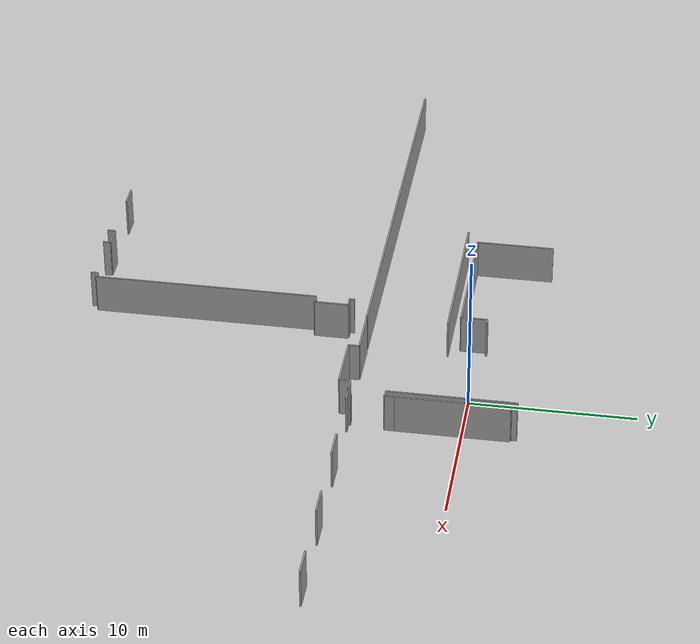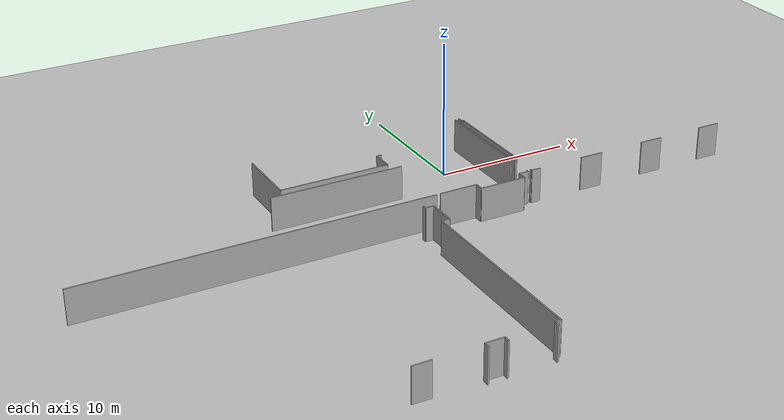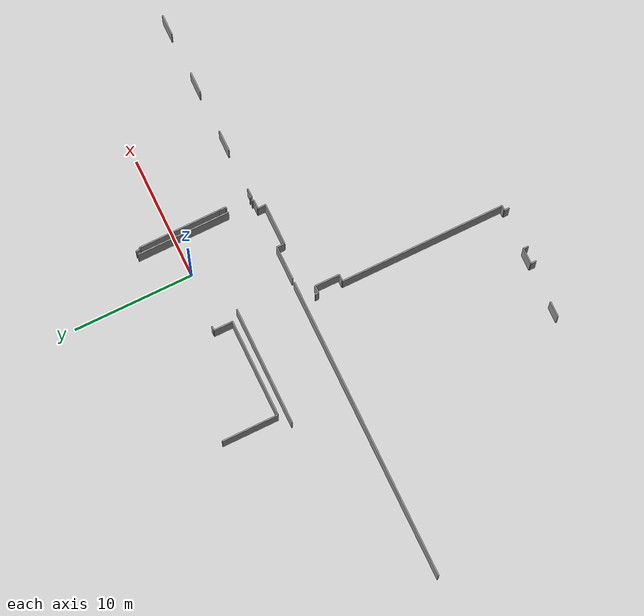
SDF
<sdf version="1.6">
 <world name="default">
  <model name="ground_plane">
   <static>1</static>
   <link name="link">
    <collision name="collision">
     <geometry><plane><normal>0 0 1</normal><size>100 100</size></plane></geometry>
     <surface><friction><ode><mu>100</mu><mu2>50</mu2></ode></friction></surface>
    </collision>
    <visual name="visual">
     <cast_shadows>0</cast_shadows>
     <geometry><plane><normal>0 0 1</normal><size>100 100</size></plane></geometry>
     <material>
      <script><uri>file://media/materials/scripts/gazebo.material</uri><name>Gazebo/Grey</name></script>
     </material>
    </visual>
   </link>
  </model>
  <model name="0510032197_A_40_1_105">
   <static>1</static>
   <link name="Wall_238">
    <collision name="Wall_238_Collision">
     <geometry><box><size>6.7708028826 0.1 2.5</size></box></geometry>
     <pose>3.3854014413 0 1.25 0 0 0</pose>
    </collision>
    <visual name="Wall_238_Visual">
     <pose>3.3854014413 0 1.25 0 0 0</pose>
     <geometry><box><size>6.7708028826 0.1 2.5</size></box></geometry>
     <material>
      <script><uri>file://media/materials/scripts/gazebo.material</uri><name>Gazebo/Grey</name></script>
      <ambient>1 1 1 1</ambient>
     </material>
    </visual>
    <pose>68.7288857255 -28.0828429441 0 0 0 1.57079632679</pose>
   </link>
   <link name="Wall_239">
    <collision name="Wall_239_Collision">
     <geometry><box><size>0.143748649576 0.1 2.5</size></box></geometry>
     <pose>0.0718743247881 0 1.25 0 0 0</pose>
    </collision>
    <visual name="Wall_239_Visual">
     <pose>0.0718743247881 0 1.25 0 0 0</pose>
     <geometry><box><size>0.143748649576 0.1 2.5</size></box></geometry>
     <material>
      <script><uri>file://media/materials/scripts/gazebo.material</uri><name>Gazebo/Grey</name></script>
      <ambient>1 1 1 1</ambient>
     </material>
    </visual>
    <pose>68.7288857255 -21.3120400615 0 0 0 3.14159265359</pose>
   </link>
   <link name="Wall_240">
    <collision name="Wall_240_Collision">
     <geometry><box><size>0.367696589941 0.1 2.5</size></box></geometry>
     <pose>0.183848294971 0 1.25 0 0 0</pose>
    </collision>
    <visual name="Wall_240_Visual">
     <pose>0.183848294971 0 1.25 0 0 0</pose>
     <geometry><box><size>0.367696589941 0.1 2.5</size></box></geometry>
     <material>
      <script><uri>file://media/materials/scripts/gazebo.material</uri><name>Gazebo/Grey</name></script>
      <ambient>1 1 1 1</ambient>
     </material>
    </visual>
    <pose>68.585137076 -21.3120400615 0 0 0 1.57079632679</pose>
   </link>
   <link name="Wall_252">
    <collision name="Wall_252_Collision">
     <geometry><box><size>1.69536979372 0.1 2.5</size></box></geometry>
     <pose>0.847684896859 0 1.25 0 0 0</pose>
    </collision>
    <visual name="Wall_252_Visual">
     <pose>0.847684896859 0 1.25 0 0 0</pose>
     <geometry><box><size>1.69536979372 0.1 2.5</size></box></geometry>
     <material>
      <script><uri>file://media/materials/scripts/gazebo.material</uri><name>Gazebo/Grey</name></script>
      <ambient>1 1 1 1</ambient>
     </material>
    </visual>
    <pose>84.6741824375 -30.8305901193 0 0 0 3.14159265359</pose>
   </link>
   <link name="Wall_253">
    <collision name="Wall_253_Collision">
     <geometry><box><size>1.72790706542 0.1 2.5</size></box></geometry>
     <pose>0.863953532709 0 1.25 0 0 0</pose>
    </collision>
    <visual name="Wall_253_Visual">
     <pose>0.863953532709 0 1.25 0 0 0</pose>
     <geometry><box><size>1.72790706542 0.1 2.5</size></box></geometry>
     <material>
      <script><uri>file://media/materials/scripts/gazebo.material</uri><name>Gazebo/Grey</name></script>
      <ambient>1 1 1 1</ambient>
     </material>
    </visual>
    <pose>79.5557899821 -30.8305901193 0 0 0 3.14159265359</pose>
   </link>
   <link name="Wall_254">
    <collision name="Wall_254_Collision">
     <geometry><box><size>1.72981354618 0.1 2.5</size></box></geometry>
     <pose>0.864906773091 0 1.25 0 0 0</pose>
    </collision>
    <visual name="Wall_254_Visual">
     <pose>0.864906773091 0 1.25 0 0 0</pose>
     <geometry><box><size>1.72981354618 0.1 2.5</size></box></geometry>
     <material>
      <script><uri>file://media/materials/scripts/gazebo.material</uri><name>Gazebo/Grey</name></script>
      <ambient>1 1 1 1</ambient>
     </material>
    </visual>
    <pose>74.4015556883 -30.8305901193 0 0 0 3.14159265359</pose>
   </link>
   <link name="Wall_255">
    <collision name="Wall_255_Collision">
     <geometry><box><size>0.701966217161 0.1 2.5</size></box></geometry>
     <pose>0.35098310858 0 1.25 0 0 0</pose>
    </collision>
    <visual name="Wall_255_Visual">
     <pose>0.35098310858 0 1.25 0 0 0</pose>
     <geometry><box><size>0.701966217161 0.1 2.5</size></box></geometry>
     <material>
      <script><uri>file://media/materials/scripts/gazebo.material</uri><name>Gazebo/Grey</name></script>
      <ambient>1 1 1 1</ambient>
     </material>
    </visual>
    <pose>69.3038803238 -30.8305901193 0 0 0 3.14159265359</pose>
   </link>
   <link name="Wall_256">
    <collision name="Wall_256_Collision">
     <geometry><box><size>0.15874629825 0.1 2.5</size></box></geometry>
     <pose>0.0793731491249 0 1.25 0 0 0</pose>
    </collision>
    <visual name="Wall_256_Visual">
     <pose>0.0793731491249 0 1.25 0 0 0</pose>
     <geometry><box><size>0.15874629825 0.1 2.5</size></box></geometry>
     <material>
      <script><uri>file://media/materials/scripts/gazebo.material</uri><name>Gazebo/Grey</name></script>
      <ambient>1 1 1 1</ambient>
     </material>
    </visual>
    <pose>68.6019141067 -30.8305901193 0 0 0 1.57079632679</pose>
   </link>
   <link name="Wall_257">
    <collision name="Wall_257_Collision">
     <geometry><box><size>0.126971618856 0.1 2.5</size></box></geometry>
     <pose>0.0634858094282 0 1.25 0 0 0</pose>
    </collision>
    <visual name="Wall_257_Visual">
     <pose>0.0634858094282 0 1.25 0 0 0</pose>
     <geometry><box><size>0.126971618856 0.1 2.5</size></box></geometry>
     <material>
      <script><uri>file://media/materials/scripts/gazebo.material</uri><name>Gazebo/Grey</name></script>
      <ambient>1 1 1 1</ambient>
     </material>
    </visual>
    <pose>68.6019141067 -28.6691493283 0 0 0 0.0</pose>
   </link>
   <link name="Wall_258">
    <collision name="Wall_258_Collision">
     <geometry><box><size>0.586306384169 0.1 2.5</size></box></geometry>
     <pose>0.293153192084 0 1.25 0 0 0</pose>
    </collision>
    <visual name="Wall_258_Visual">
     <pose>0.293153192084 0 1.25 0 0 0</pose>
     <geometry><box><size>0.586306384169 0.1 2.5</size></box></geometry>
     <material>
      <script><uri>file://media/materials/scripts/gazebo.material</uri><name>Gazebo/Grey</name></script>
      <ambient>1 1 1 1</ambient>
     </material>
    </visual>
    <pose>68.7288857255 -28.6691493283 0 0 0 1.57079632679</pose>
   </link>
   <link name="Wall_259">
    <collision name="Wall_259_Collision">
     <geometry><box><size>2.78282642128 0.1 2.5</size></box></geometry>
     <pose>1.39141321064 0 1.25 0 0 0</pose>
    </collision>
    <visual name="Wall_259_Visual">
     <pose>1.39141321064 0 1.25 0 0 0</pose>
     <geometry><box><size>2.78282642128 0.1 2.5</size></box></geometry>
     <material>
      <script><uri>file://media/materials/scripts/gazebo.material</uri><name>Gazebo/Grey</name></script>
      <ambient>1 1 1 1</ambient>
     </material>
    </visual>
    <pose>61.3907141677 -30.8698636231 0 0 0 0.0</pose>
   </link>
   <link name="Wall_260">
    <collision name="Wall_260_Collision">
     <geometry><box><size>0.646805373734 0.1 2.5</size></box></geometry>
     <pose>0.323402686867 0 1.25 0 0 0</pose>
    </collision>
    <visual name="Wall_260_Visual">
     <pose>0.323402686867 0 1.25 0 0 0</pose>
     <geometry><box><size>0.646805373734 0.1 2.5</size></box></geometry>
     <material>
      <script><uri>file://media/materials/scripts/gazebo.material</uri><name>Gazebo/Grey</name></script>
      <ambient>1 1 1 1</ambient>
     </material>
    </visual>
    <pose>64.173540589 -30.8698636231 0 0 0 -1.57079632679</pose>
   </link>
   <link name="Wall_261">
    <collision name="Wall_261_Collision">
     <geometry><box><size>3.39531514127 0.1 2.5</size></box></geometry>
     <pose>1.69765757064 0 1.25 0 0 0</pose>
    </collision>
    <visual name="Wall_261_Visual">
     <pose>1.69765757064 0 1.25 0 0 0</pose>
     <geometry><box><size>3.39531514127 0.1 2.5</size></box></geometry>
     <material>
      <script><uri>file://media/materials/scripts/gazebo.material</uri><name>Gazebo/Grey</name></script>
      <ambient>1 1 1 1</ambient>
     </material>
    </visual>
    <pose>64.173540589 -31.5166689968 0 0 0 0.0</pose>
   </link>
   <link name="Wall_262">
    <collision name="Wall_262_Collision">
     <geometry><box><size>0.661294627537 0.1 2.5</size></box></geometry>
     <pose>0.330647313769 0 1.25 0 0 0</pose>
    </collision>
    <visual name="Wall_262_Visual">
     <pose>0.330647313769 0 1.25 0 0 0</pose>
     <geometry><box><size>0.661294627537 0.1 2.5</size></box></geometry>
     <material>
      <script><uri>file://media/materials/scripts/gazebo.material</uri><name>Gazebo/Grey</name></script>
      <ambient>1 1 1 1</ambient>
     </material>
    </visual>
    <pose>67.5688557302 -31.5166689968 0 0 0 1.57079632679</pose>
   </link>
   <link name="Wall_263">
    <collision name="Wall_263_Collision">
     <geometry><box><size>0.712134114567 0.1 2.5</size></box></geometry>
     <pose>0.356067057283 0 1.25 0 0 0</pose>
    </collision>
    <visual name="Wall_263_Visual">
     <pose>0.356067057283 0 1.25 0 0 0</pose>
     <geometry><box><size>0.712134114567 0.1 2.5</size></box></geometry>
     <material>
      <script><uri>file://media/materials/scripts/gazebo.material</uri><name>Gazebo/Grey</name></script>
      <ambient>1 1 1 1</ambient>
     </material>
    </visual>
    <pose>67.5688557302 -30.8553743693 0 0 0 0.0</pose>
   </link>
   <link name="Wall_264">
    <collision name="Wall_264_Collision">
     <geometry><box><size>0.159890186708 0.1 2.5</size></box></geometry>
     <pose>0.079945093354 0 1.25 0 0 0</pose>
    </collision>
    <visual name="Wall_264_Visual">
     <pose>0.079945093354 0 1.25 0 0 0</pose>
     <geometry><box><size>0.159890186708 0.1 2.5</size></box></geometry>
     <material>
      <script><uri>file://media/materials/scripts/gazebo.material</uri><name>Gazebo/Grey</name></script>
      <ambient>1 1 1 1</ambient>
     </material>
    </visual>
    <pose>68.2809898448 -30.8553743693 0 0 0 1.57079632679</pose>
   </link>
   <link name="Wall_265">
    <collision name="Wall_265_Collision">
     <geometry><box><size>7.74653973741 0.1 2.5</size></box></geometry>
     <pose>3.87326986871 0 1.25 0 0 0</pose>
    </collision>
    <visual name="Wall_265_Visual">
     <pose>3.87326986871 0 1.25 0 0 0</pose>
     <geometry><box><size>7.74653973741 0.1 2.5</size></box></geometry>
     <material>
      <script><uri>file://media/materials/scripts/gazebo.material</uri><name>Gazebo/Grey</name></script>
      <ambient>1 1 1 1</ambient>
     </material>
    </visual>
    <pose>68.2809898448 -28.6971110461 0 0 0 1.57079632679</pose>
   </link>
   <link name="Wall_273">
    <collision name="Wall_273_Collision">
     <geometry><box><size>4.73290204502 0.1 2.5</size></box></geometry>
     <pose>2.36645102251 0 1.25 0 0 0</pose>
    </collision>
    <visual name="Wall_273_Visual">
     <pose>2.36645102251 0 1.25 0 0 0</pose>
     <geometry><box><size>4.73290204502 0.1 2.5</size></box></geometry>
     <material>
      <script><uri>file://media/materials/scripts/gazebo.material</uri><name>Gazebo/Grey</name></script>
      <ambient>1 1 1 1</ambient>
     </material>
    </visual>
    <pose>52.3396331931 -25.2737070883 0 0 0 1.57079632679</pose>
   </link>
   <link name="Wall_285">
    <collision name="Wall_285_Collision">
     <geometry><box><size>0.345073018213 0.1 2.5</size></box></geometry>
     <pose>0.172536509107 0 1.25 0 0 0</pose>
    </collision>
    <visual name="Wall_285_Visual">
     <pose>0.172536509107 0 1.25 0 0 0</pose>
     <geometry><box><size>0.345073018213 0.1 2.5</size></box></geometry>
     <material>
      <script><uri>file://media/materials/scripts/gazebo.material</uri><name>Gazebo/Grey</name></script>
      <ambient>1 1 1 1</ambient>
     </material>
    </visual>
    <pose>60.7379351542 -23.6881505866 0 0 0 3.14159265359</pose>
   </link>
   <link name="Wall_286">
    <collision name="Wall_286_Collision">
     <geometry><box><size>1.58631909404 0.1 2.5</size></box></geometry>
     <pose>0.79315954702 0 1.25 0 0 0</pose>
    </collision>
    <visual name="Wall_286_Visual">
     <pose>0.79315954702 0 1.25 0 0 0</pose>
     <geometry><box><size>1.58631909404 0.1 2.5</size></box></geometry>
     <material>
      <script><uri>file://media/materials/scripts/gazebo.material</uri><name>Gazebo/Grey</name></script>
      <ambient>1 1 1 1</ambient>
     </material>
    </visual>
    <pose>60.392862136 -23.6881505866 0 0 0 -1.57079632679</pose>
   </link>
   <link name="Wall_287">
    <collision name="Wall_287_Collision">
     <geometry><box><size>8.05322897903 0.1 2.5</size></box></geometry>
     <pose>4.02661448951 0 1.25 0 0 0</pose>
    </collision>
    <visual name="Wall_287_Visual">
     <pose>4.02661448951 0 1.25 0 0 0</pose>
     <geometry><box><size>8.05322897903 0.1 2.5</size></box></geometry>
     <material>
      <script><uri>file://media/materials/scripts/gazebo.material</uri><name>Gazebo/Grey</name></script>
      <ambient>1 1 1 1</ambient>
     </material>
    </visual>
    <pose>60.392862136 -25.2744696806 0 0 0 3.14149795961</pose>
   </link>
   <link name="Wall_371">
    <collision name="Wall_371_Collision">
     <geometry><box><size>0.30020717091 0.1 2.5</size></box></geometry>
     <pose>0.150103585455 0 1.25 0 0 0</pose>
    </collision>
    <visual name="Wall_371_Visual">
     <pose>0.150103585455 0 1.25 0 0 0</pose>
     <geometry><box><size>0.30020717091 0.1 2.5</size></box></geometry>
     <material>
      <script><uri>file://media/materials/scripts/gazebo.material</uri><name>Gazebo/Grey</name></script>
      <ambient>1 1 1 1</ambient>
     </material>
    </visual>
    <pose>59.5495621449 -31.8848739816 0 0 0 -1.57079632679</pose>
   </link>
   <link name="Wall_372">
    <collision name="Wall_372_Collision">
     <geometry><box><size>0.597363972598 0.1 2.5</size></box></geometry>
     <pose>0.298681986299 0 1.25 0 0 0</pose>
    </collision>
    <visual name="Wall_372_Visual">
     <pose>0.298681986299 0 1.25 0 0 0</pose>
     <geometry><box><size>0.597363972598 0.1 2.5</size></box></geometry>
     <material>
      <script><uri>file://media/materials/scripts/gazebo.material</uri><name>Gazebo/Grey</name></script>
      <ambient>1 1 1 1</ambient>
     </material>
    </visual>
    <pose>59.5495621449 -32.1850811525 0 0 0 0.0</pose>
   </link>
   <link name="Wall_373">
    <collision name="Wall_373_Collision">
     <geometry><box><size>2.06166829777 0.1 2.5</size></box></geometry>
     <pose>1.03083414888 0 1.25 0 0 0</pose>
    </collision>
    <visual name="Wall_373_Visual">
     <pose>1.03083414888 0 1.25 0 0 0</pose>
     <geometry><box><size>2.06166829777 0.1 2.5</size></box></geometry>
     <material>
      <script><uri>file://media/materials/scripts/gazebo.material</uri><name>Gazebo/Grey</name></script>
      <ambient>1 1 1 1</ambient>
     </material>
    </visual>
    <pose>60.1469261175 -32.1850811525 0 0 0 -1.57079632679</pose>
   </link>
   <link name="Wall_374">
    <collision name="Wall_374_Collision">
     <geometry><box><size>0.571944229083 0.1 2.5</size></box></geometry>
     <pose>0.285972114541 0 1.25 0 0 0</pose>
    </collision>
    <visual name="Wall_374_Visual">
     <pose>0.285972114541 0 1.25 0 0 0</pose>
     <geometry><box><size>0.571944229083 0.1 2.5</size></box></geometry>
     <material>
      <script><uri>file://media/materials/scripts/gazebo.material</uri><name>Gazebo/Grey</name></script>
      <ambient>1 1 1 1</ambient>
     </material>
    </visual>
    <pose>60.1469261175 -34.2467494503 0 0 0 3.14159265359</pose>
   </link>
   <link name="Wall_375">
    <collision name="Wall_375_Collision">
     <geometry><box><size>13.673534234 0.1 2.5</size></box></geometry>
     <pose>6.83676711702 0 1.25 0 0 0</pose>
    </collision>
    <visual name="Wall_375_Visual">
     <pose>6.83676711702 0 1.25 0 0 0</pose>
     <geometry><box><size>13.673534234 0.1 2.5</size></box></geometry>
     <material>
      <script><uri>file://media/materials/scripts/gazebo.material</uri><name>Gazebo/Grey</name></script>
      <ambient>1 1 1 1</ambient>
     </material>
    </visual>
    <pose>59.5749818884 -34.2467494503 0 0 0 -1.57079632679</pose>
   </link>
   <link name="Wall_376">
    <collision name="Wall_376_Collision">
     <geometry><box><size>0.404682316755 0.1 2.5</size></box></geometry>
     <pose>0.202341158378 0 1.25 0 0 0</pose>
    </collision>
    <visual name="Wall_376_Visual">
     <pose>0.202341158378 0 1.25 0 0 0</pose>
     <geometry><box><size>0.404682316755 0.1 2.5</size></box></geometry>
     <material>
      <script><uri>file://media/materials/scripts/gazebo.material</uri><name>Gazebo/Grey</name></script>
      <ambient>1 1 1 1</ambient>
     </material>
    </visual>
    <pose>59.5749818884 -47.9202836843 0 0 0 3.14159265359</pose>
   </link>
   <link name="Wall_377">
    <collision name="Wall_377_Collision">
     <geometry><box><size>0.424128420544 0.1 2.5</size></box></geometry>
     <pose>0.212064210272 0 1.25 0 0 0</pose>
    </collision>
    <visual name="Wall_377_Visual">
     <pose>0.212064210272 0 1.25 0 0 0</pose>
     <geometry><box><size>0.424128420544 0.1 2.5</size></box></geometry>
     <material>
      <script><uri>file://media/materials/scripts/gazebo.material</uri><name>Gazebo/Grey</name></script>
      <ambient>1 1 1 1</ambient>
     </material>
    </visual>
    <pose>59.1702995717 -47.9202836843 0 0 0 -1.57079632679</pose>
   </link>
   <link name="Wall_378">
    <collision name="Wall_378_Collision">
     <geometry><box><size>0.440905451264 0.1 2.5</size></box></geometry>
     <pose>0.220452725632 0 1.25 0 0 0</pose>
    </collision>
    <visual name="Wall_378_Visual">
     <pose>0.220452725632 0 1.25 0 0 0</pose>
     <geometry><box><size>0.440905451264 0.1 2.5</size></box></geometry>
     <material>
      <script><uri>file://media/materials/scripts/gazebo.material</uri><name>Gazebo/Grey</name></script>
      <ambient>1 1 1 1</ambient>
     </material>
    </visual>
    <pose>55.82556972 -48.3444121049 0 0 0 1.57079632679</pose>
   </link>
   <link name="Wall_379">
    <collision name="Wall_379_Collision">
     <geometry><box><size>1.29564432695 0.1 2.5</size></box></geometry>
     <pose>0.647822163474 0 1.25 0 0 0</pose>
    </collision>
    <visual name="Wall_379_Visual">
     <pose>0.647822163474 0 1.25 0 0 0</pose>
     <geometry><box><size>1.29564432695 0.1 2.5</size></box></geometry>
     <material>
      <script><uri>file://media/materials/scripts/gazebo.material</uri><name>Gazebo/Grey</name></script>
      <ambient>1 1 1 1</ambient>
     </material>
    </visual>
    <pose>55.82556972 -47.9035066536 0 0 0 3.14159265359</pose>
   </link>
   <link name="Wall_380">
    <collision name="Wall_380_Collision">
     <geometry><box><size>0.456411494808 0.1 2.5</size></box></geometry>
     <pose>0.228205747404 0 1.25 0 0 0</pose>
    </collision>
    <visual name="Wall_380_Visual">
     <pose>0.228205747404 0 1.25 0 0 0</pose>
     <geometry><box><size>0.456411494808 0.1 2.5</size></box></geometry>
     <material>
      <script><uri>file://media/materials/scripts/gazebo.material</uri><name>Gazebo/Grey</name></script>
      <ambient>1 1 1 1</ambient>
     </material>
    </visual>
    <pose>54.5299253931 -47.9035066536 0 0 0 -1.57079632679</pose>
   </link>
   <link name="Wall_382">
    <collision name="Wall_382_Collision">
     <geometry><box><size>1.31394654228 0.1 2.5</size></box></geometry>
     <pose>0.65697327114 0 1.25 0 0 0</pose>
    </collision>
    <visual name="Wall_382_Visual">
     <pose>0.65697327114 0 1.25 0 0 0</pose>
     <geometry><box><size>1.31394654228 0.1 2.5</size></box></geometry>
     <material>
      <script><uri>file://media/materials/scripts/gazebo.material</uri><name>Gazebo/Grey</name></script>
      <ambient>1 1 1 1</ambient>
     </material>
    </visual>
    <pose>51.1928214644 -47.9234611523 0 0 0 3.14159265359</pose>
   </link>
   <link name="Wall_411">
    <collision name="Wall_411_Collision">
     <geometry><box><size>9.78482187115 0.1 2.5</size></box></geometry>
     <pose>4.89241093557 0 1.25 0 0 0</pose>
    </collision>
    <visual name="Wall_411_Visual">
     <pose>4.89241093557 0 1.25 0 0 0</pose>
     <geometry><box><size>9.78482187115 0.1 2.5</size></box></geometry>
     <material>
      <script><uri>file://media/materials/scripts/gazebo.material</uri><name>Gazebo/Grey</name></script>
      <ambient>1 1 1 1</ambient>
     </material>
    </visual>
    <pose>51.320809873 -25.979486267 0 0 0 0.0</pose>
   </link>
   <link name="Wall_412">
    <collision name="Wall_412_Collision">
     <geometry><box><size>25.1861360719 0.1 2.5</size></box></geometry>
     <pose>12.5930680359 0 1.25 0 0 0</pose>
    </collision>
    <visual name="Wall_412_Visual">
     <pose>12.5930680359 0 1.25 0 0 0</pose>
     <geometry><box><size>25.1861360719 0.1 2.5</size></box></geometry>
     <material>
      <script><uri>file://media/materials/scripts/gazebo.material</uri><name>Gazebo/Grey</name></script>
      <ambient>1 1 1 1</ambient>
     </material>
    </visual>
    <pose>61.1056317442 -30.8795231256 0 0 0 3.14159265359</pose>
   </link>
   <pose>-65.5 24.1613162343 0 0 0 0</pose>
  </model>
 </world>
</sdf>
